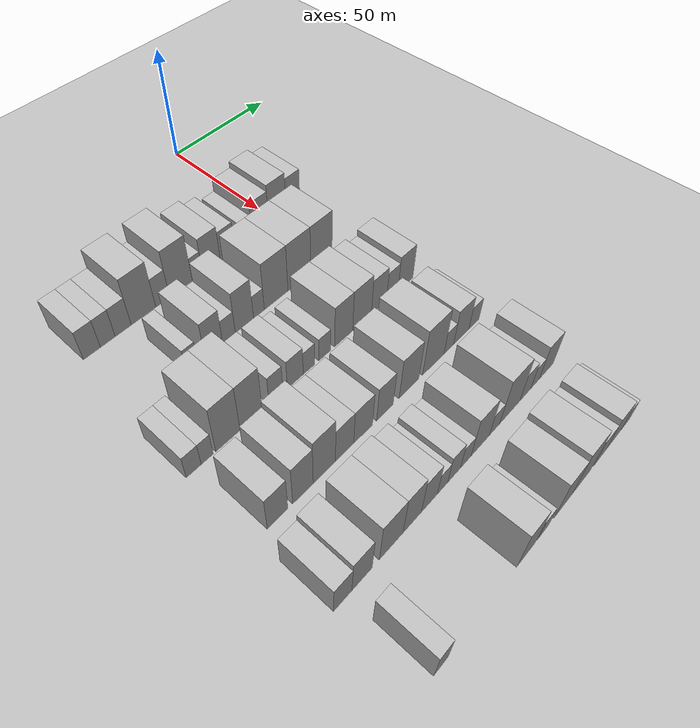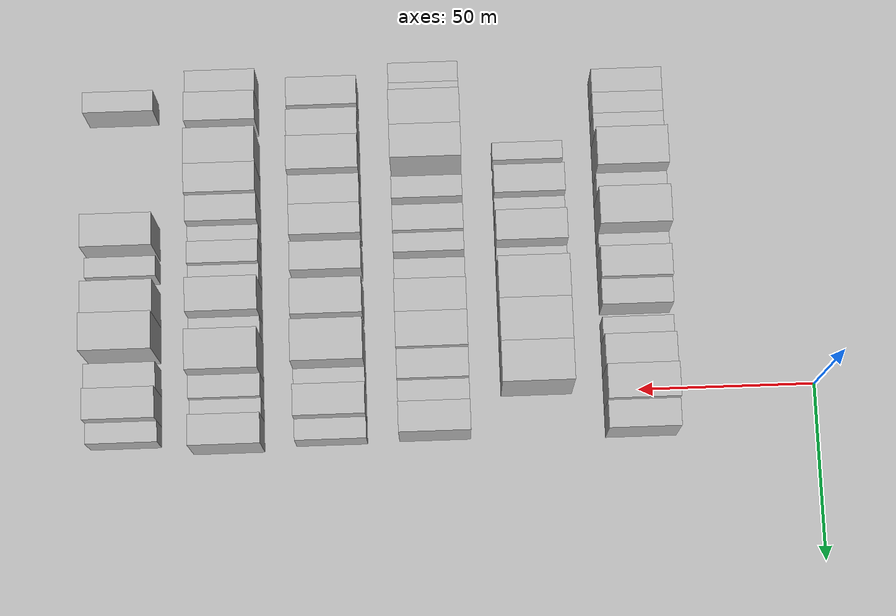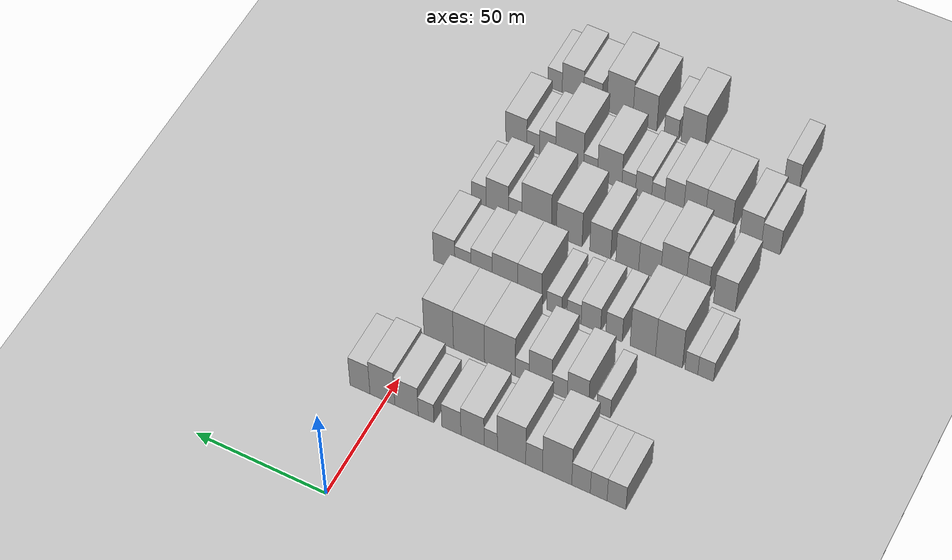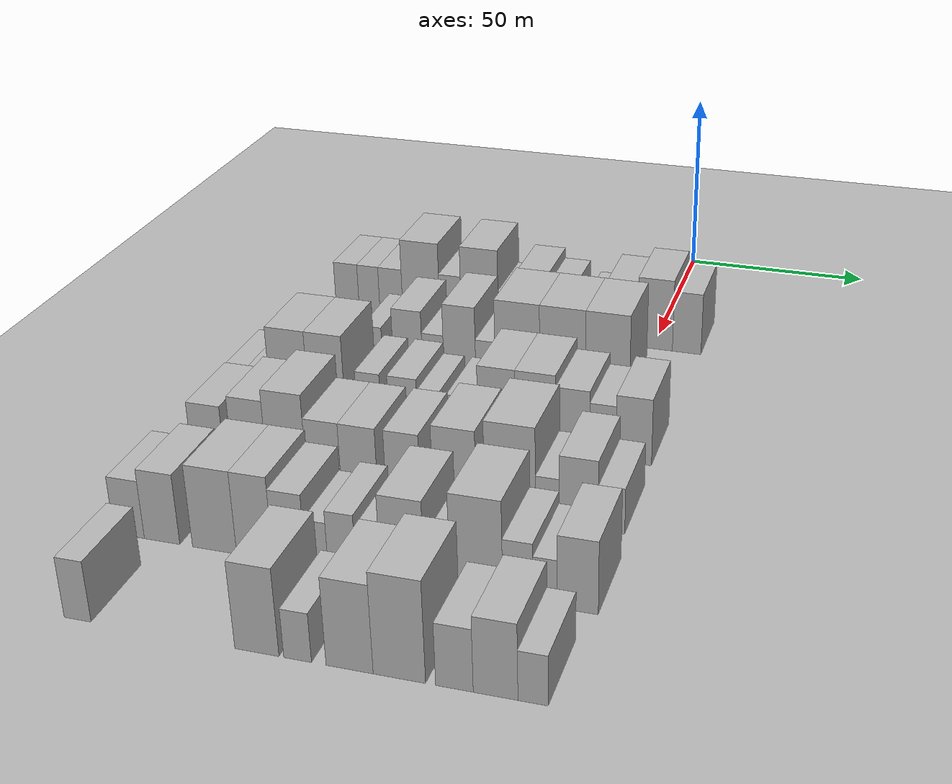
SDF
<sdf version="1.6">
 <world name="default">
  <include><name>ground_plane_1</name><uri>model://HANNAS_ground_plane</uri></include>
  <include>
   <name>ground_plane_2</name>
   <uri>model://HANNAS_ground_plane</uri>
   <pose>100 0 0  0 0 0</pose>
  </include>
  <model name="building_46">
   <static>1</static>
   <pose>50.0000 -87.1655 0 0.000000 0.000000 0.000000</pose>
   <link name="link">
    <pose>0 0 7.50 0 0 0</pose>
    <collision name="collision"><geometry><box><size>20.0000 6.9278 15.0000</size></box></geometry></collision>
    <visual name="visual">
     <cast_shadows>0</cast_shadows>
     <geometry><box><size>20.0000 6.9278 15.0000</size></box></geometry>
     <material>
      <script>
       <uri>model://HANNAS_wall/materials/scripts</uri>
       <uri>model://HANNAS_wall/materials/textures</uri>
       <name>vrc/HANNAS_wall</name>
      </script>
     </material>
    </visual>
   </link>
  </model>
  <model name="building_47">
   <static>1</static>
   <pose>50.0000 -80.6091 0 0.000000 0.000000 0.000000</pose>
   <link name="link">
    <pose>0 0 7.50 0 0 0</pose>
    <collision name="collision"><geometry><box><size>20.0000 6.1850 15.0000</size></box></geometry></collision>
    <visual name="visual">
     <cast_shadows>0</cast_shadows>
     <geometry><box><size>20.0000 6.1850 15.0000</size></box></geometry>
     <material>
      <script>
       <uri>model://HANNAS_wall/materials/scripts</uri>
       <uri>model://HANNAS_wall/materials/textures</uri>
       <name>vrc/HANNAS_wall</name>
      </script>
     </material>
    </visual>
   </link>
  </model>
  <model name="building_48">
   <static>1</static>
   <pose>50.0000 -74.0983 0 0.000000 0.000000 0.000000</pose>
   <link name="link">
    <pose>0 0 7.50 0 0 0</pose>
    <collision name="collision"><geometry><box><size>20.0000 6.8367 15.0000</size></box></geometry></collision>
    <visual name="visual">
     <cast_shadows>0</cast_shadows>
     <geometry><box><size>20.0000 6.8367 15.0000</size></box></geometry>
     <material>
      <script>
       <uri>model://HANNAS_wall/materials/scripts</uri>
       <uri>model://HANNAS_wall/materials/textures</uri>
       <name>vrc/HANNAS_wall</name>
      </script>
     </material>
    </visual>
   </link>
  </model>
  <model name="building_49">
   <static>1</static>
   <pose>50.0000 -65.2504 0 0.000000 0.000000 0.000000</pose>
   <link name="link">
    <pose>0 0 12.00 0 0 0</pose>
    <collision name="collision"><geometry><box><size>20.0000 10.8591 24.0000</size></box></geometry></collision>
    <visual name="visual">
     <cast_shadows>0</cast_shadows>
     <geometry><box><size>20.0000 10.8591 24.0000</size></box></geometry>
     <material>
      <script>
       <uri>model://HANNAS_wall/materials/scripts</uri>
       <uri>model://HANNAS_wall/materials/textures</uri>
       <name>vrc/HANNAS_wall</name>
      </script>
     </material>
    </visual>
   </link>
  </model>
  <model name="building_50">
   <static>1</static>
   <pose>50.0000 -56.7006 0 0.000000 0.000000 0.000000</pose>
   <link name="link">
    <pose>0 0 7.50 0 0 0</pose>
    <collision name="collision"><geometry><box><size>20.0000 6.2407 15.0000</size></box></geometry></collision>
    <visual name="visual">
     <cast_shadows>0</cast_shadows>
     <geometry><box><size>20.0000 6.2407 15.0000</size></box></geometry>
     <material>
      <script>
       <uri>model://HANNAS_wall/materials/scripts</uri>
       <uri>model://HANNAS_wall/materials/textures</uri>
       <name>vrc/HANNAS_wall</name>
      </script>
     </material>
    </visual>
   </link>
  </model>
  <model name="building_51">
   <static>1</static>
   <pose>50.0000 -48.2605 0 0.000000 0.000000 0.000000</pose>
   <link name="link">
    <pose>0 0 12.00 0 0 0</pose>
    <collision name="collision"><geometry><box><size>20.0000 10.6394 24.0000</size></box></geometry></collision>
    <visual name="visual">
     <cast_shadows>0</cast_shadows>
     <geometry><box><size>20.0000 10.6394 24.0000</size></box></geometry>
     <material>
      <script>
       <uri>model://HANNAS_wall/materials/scripts</uri>
       <uri>model://HANNAS_wall/materials/textures</uri>
       <name>vrc/HANNAS_wall</name>
      </script>
     </material>
    </visual>
   </link>
  </model>
  <model name="building_52">
   <static>1</static>
   <pose>50.0000 -40.4594 0 0.000000 0.000000 0.000000</pose>
   <link name="link">
    <pose>0 0 6.00 0 0 0</pose>
    <collision name="collision"><geometry><box><size>20.0000 4.9629 12.0000</size></box></geometry></collision>
    <visual name="visual">
     <cast_shadows>0</cast_shadows>
     <geometry><box><size>20.0000 4.9629 12.0000</size></box></geometry>
     <material>
      <script>
       <uri>model://HANNAS_wall/materials/scripts</uri>
       <uri>model://HANNAS_wall/materials/textures</uri>
       <name>vrc/HANNAS_wall</name>
      </script>
     </material>
    </visual>
   </link>
  </model>
  <model name="building_53">
   <static>1</static>
   <pose>50.0000 -33.5909 0 0.000000 0.000000 0.000000</pose>
   <link name="link">
    <pose>0 0 9.00 0 0 0</pose>
    <collision name="collision"><geometry><box><size>20.0000 8.7740 18.0000</size></box></geometry></collision>
    <visual name="visual">
     <cast_shadows>0</cast_shadows>
     <geometry><box><size>20.0000 8.7740 18.0000</size></box></geometry>
     <material>
      <script>
       <uri>model://HANNAS_wall/materials/scripts</uri>
       <uri>model://HANNAS_wall/materials/textures</uri>
       <name>vrc/HANNAS_wall</name>
      </script>
     </material>
    </visual>
   </link>
  </model>
  <model name="building_54">
   <static>1</static>
   <pose>50.0000 -25.5761 0 0.000000 0.000000 0.000000</pose>
   <link name="link">
    <pose>0 0 7.50 0 0 0</pose>
    <collision name="collision"><geometry><box><size>20.0000 7.2556 15.0000</size></box></geometry></collision>
    <visual name="visual">
     <cast_shadows>0</cast_shadows>
     <geometry><box><size>20.0000 7.2556 15.0000</size></box></geometry>
     <material>
      <script>
       <uri>model://HANNAS_wall/materials/scripts</uri>
       <uri>model://HANNAS_wall/materials/textures</uri>
       <name>vrc/HANNAS_wall</name>
      </script>
     </material>
    </visual>
   </link>
  </model>
  <model name="building_55">
   <static>1</static>
   <pose>50.0000 -15.9511 0 0.000000 0.000000 0.000000</pose>
   <link name="link">
    <pose>0 0 6.00 0 0 0</pose>
    <collision name="collision"><geometry><box><size>20.0000 5.9945 12.0000</size></box></geometry></collision>
    <visual name="visual">
     <cast_shadows>0</cast_shadows>
     <geometry><box><size>20.0000 5.9945 12.0000</size></box></geometry>
     <material>
      <script>
       <uri>model://HANNAS_wall/materials/scripts</uri>
       <uri>model://HANNAS_wall/materials/textures</uri>
       <name>vrc/HANNAS_wall</name>
      </script>
     </material>
    </visual>
   </link>
  </model>
  <model name="building_56">
   <static>1</static>
   <pose>50.0000 -8.4623 0 0.000000 0.000000 0.000000</pose>
   <link name="link">
    <pose>0 0 9.00 0 0 0</pose>
    <collision name="collision"><geometry><box><size>20.0000 8.9830 18.0000</size></box></geometry></collision>
    <visual name="visual">
     <cast_shadows>0</cast_shadows>
     <geometry><box><size>20.0000 8.9830 18.0000</size></box></geometry>
     <material>
      <script>
       <uri>model://HANNAS_wall/materials/scripts</uri>
       <uri>model://HANNAS_wall/materials/textures</uri>
       <name>vrc/HANNAS_wall</name>
      </script>
     </material>
    </visual>
   </link>
  </model>
  <model name="building_57">
   <static>1</static>
   <pose>50.0000 0.8350 0 0.000000 0.000000 0.000000</pose>
   <link name="link">
    <pose>0 0 10.50 0 0 0</pose>
    <collision name="collision"><geometry><box><size>20.0000 9.6116 21.0000</size></box></geometry></collision>
    <visual name="visual">
     <cast_shadows>0</cast_shadows>
     <geometry><box><size>20.0000 9.6116 21.0000</size></box></geometry>
     <material>
      <script>
       <uri>model://HANNAS_wall/materials/scripts</uri>
       <uri>model://HANNAS_wall/materials/textures</uri>
       <name>vrc/HANNAS_wall</name>
      </script>
     </material>
    </visual>
   </link>
  </model>
  <model name="building_58">
   <static>1</static>
   <pose>50.0000 9.5036 0 0.000000 0.000000 0.000000</pose>
   <link name="link">
    <pose>0 0 9.00 0 0 0</pose>
    <collision name="collision"><geometry><box><size>20.0000 7.7256 18.0000</size></box></geometry></collision>
    <visual name="visual">
     <cast_shadows>0</cast_shadows>
     <geometry><box><size>20.0000 7.7256 18.0000</size></box></geometry>
     <material>
      <script>
       <uri>model://HANNAS_wall/materials/scripts</uri>
       <uri>model://HANNAS_wall/materials/textures</uri>
       <name>vrc/HANNAS_wall</name>
      </script>
     </material>
    </visual>
   </link>
  </model>
  <model name="building_159">
   <static>1</static>
   <pose>79.0000 -68.0960 0 0.000000 0.000000 0.000000</pose>
   <link name="link">
    <pose>0 0 6.00 0 0 0</pose>
    <collision name="collision"><geometry><box><size>20.0000 5.1907 12.0000</size></box></geometry></collision>
    <visual name="visual">
     <cast_shadows>0</cast_shadows>
     <geometry><box><size>20.0000 5.1907 12.0000</size></box></geometry>
     <material>
      <script>
       <uri>model://HANNAS_wall/materials/scripts</uri>
       <uri>model://HANNAS_wall/materials/textures</uri>
       <name>vrc/HANNAS_wall</name>
      </script>
     </material>
    </visual>
   </link>
  </model>
  <model name="building_160">
   <static>1</static>
   <pose>79.0000 -58.4691 0 0.000000 0.000000 0.000000</pose>
   <link name="link">
    <pose>0 0 9.00 0 0 0</pose>
    <collision name="collision"><geometry><box><size>20.0000 8.0632 18.0000</size></box></geometry></collision>
    <visual name="visual">
     <cast_shadows>0</cast_shadows>
     <geometry><box><size>20.0000 8.0632 18.0000</size></box></geometry>
     <material>
      <script>
       <uri>model://HANNAS_wall/materials/scripts</uri>
       <uri>model://HANNAS_wall/materials/textures</uri>
       <name>vrc/HANNAS_wall</name>
      </script>
     </material>
    </visual>
   </link>
  </model>
  <model name="building_161">
   <static>1</static>
   <pose>79.0000 -51.5164 0 0.000000 0.000000 0.000000</pose>
   <link name="link">
    <pose>0 0 6.00 0 0 0</pose>
    <collision name="collision"><geometry><box><size>20.0000 5.8422 12.0000</size></box></geometry></collision>
    <visual name="visual">
     <cast_shadows>0</cast_shadows>
     <geometry><box><size>20.0000 5.8422 12.0000</size></box></geometry>
     <material>
      <script>
       <uri>model://HANNAS_wall/materials/scripts</uri>
       <uri>model://HANNAS_wall/materials/textures</uri>
       <name>vrc/HANNAS_wall</name>
      </script>
     </material>
    </visual>
   </link>
  </model>
  <model name="building_162">
   <static>1</static>
   <pose>79.0000 -44.2681 0 0.000000 0.000000 0.000000</pose>
   <link name="link">
    <pose>0 0 10.50 0 0 0</pose>
    <collision name="collision"><geometry><box><size>20.0000 8.6544 21.0000</size></box></geometry></collision>
    <visual name="visual">
     <cast_shadows>0</cast_shadows>
     <geometry><box><size>20.0000 8.6544 21.0000</size></box></geometry>
     <material>
      <script>
       <uri>model://HANNAS_wall/materials/scripts</uri>
       <uri>model://HANNAS_wall/materials/textures</uri>
       <name>vrc/HANNAS_wall</name>
      </script>
     </material>
    </visual>
   </link>
  </model>
  <model name="building_163">
   <static>1</static>
   <pose>79.0000 -37.3305 0 0.000000 0.000000 0.000000</pose>
   <link name="link">
    <pose>0 0 6.00 0 0 0</pose>
    <collision name="collision"><geometry><box><size>20.0000 5.2207 12.0000</size></box></geometry></collision>
    <visual name="visual">
     <cast_shadows>0</cast_shadows>
     <geometry><box><size>20.0000 5.2207 12.0000</size></box></geometry>
     <material>
      <script>
       <uri>model://HANNAS_wall/materials/scripts</uri>
       <uri>model://HANNAS_wall/materials/textures</uri>
       <name>vrc/HANNAS_wall</name>
      </script>
     </material>
    </visual>
   </link>
  </model>
  <model name="building_164">
   <static>1</static>
   <pose>79.0000 -28.7968 0 0.000000 0.000000 0.000000</pose>
   <link name="link">
    <pose>0 0 12.00 0 0 0</pose>
    <collision name="collision"><geometry><box><size>20.0000 11.8466 24.0000</size></box></geometry></collision>
    <visual name="visual">
     <cast_shadows>0</cast_shadows>
     <geometry><box><size>20.0000 11.8466 24.0000</size></box></geometry>
     <material>
      <script>
       <uri>model://HANNAS_wall/materials/scripts</uri>
       <uri>model://HANNAS_wall/materials/textures</uri>
       <name>vrc/HANNAS_wall</name>
      </script>
     </material>
    </visual>
   </link>
  </model>
  <model name="building_165">
   <static>1</static>
   <pose>79.0000 -16.8841 0 0.000000 0.000000 0.000000</pose>
   <link name="link">
    <pose>0 0 12.00 0 0 0</pose>
    <collision name="collision"><geometry><box><size>20.0000 11.9790 24.0000</size></box></geometry></collision>
    <visual name="visual">
     <cast_shadows>0</cast_shadows>
     <geometry><box><size>20.0000 11.9790 24.0000</size></box></geometry>
     <material>
      <script>
       <uri>model://HANNAS_wall/materials/scripts</uri>
       <uri>model://HANNAS_wall/materials/textures</uri>
       <name>vrc/HANNAS_wall</name>
      </script>
     </material>
    </visual>
   </link>
  </model>
  <model name="building_166">
   <static>1</static>
   <pose>79.0000 -5.1705 0 0.000000 0.000000 0.000000</pose>
   <link name="link">
    <pose>0 0 12.00 0 0 0</pose>
    <collision name="collision"><geometry><box><size>20.0000 11.4482 24.0000</size></box></geometry></collision>
    <visual name="visual">
     <cast_shadows>0</cast_shadows>
     <geometry><box><size>20.0000 11.4482 24.0000</size></box></geometry>
     <material>
      <script>
       <uri>model://HANNAS_wall/materials/scripts</uri>
       <uri>model://HANNAS_wall/materials/textures</uri>
       <name>vrc/HANNAS_wall</name>
      </script>
     </material>
    </visual>
   </link>
  </model>
  <model name="building_266">
   <static>1</static>
   <pose>108.0000 -92.4656 0 0.000000 0.000000 0.000000</pose>
   <link name="link">
    <pose>0 0 6.00 0 0 0</pose>
    <collision name="collision"><geometry><box><size>20.0000 5.9089 12.0000</size></box></geometry></collision>
    <visual name="visual">
     <cast_shadows>0</cast_shadows>
     <geometry><box><size>20.0000 5.9089 12.0000</size></box></geometry>
     <material>
      <script>
       <uri>model://HANNAS_wall/materials/scripts</uri>
       <uri>model://HANNAS_wall/materials/textures</uri>
       <name>vrc/HANNAS_wall</name>
      </script>
     </material>
    </visual>
   </link>
  </model>
  <model name="building_267">
   <static>1</static>
   <pose>108.0000 -87.1014 0 0.000000 0.000000 0.000000</pose>
   <link name="link">
    <pose>0 0 6.00 0 0 0</pose>
    <collision name="collision"><geometry><box><size>20.0000 4.8195 12.0000</size></box></geometry></collision>
    <visual name="visual">
     <cast_shadows>0</cast_shadows>
     <geometry><box><size>20.0000 4.8195 12.0000</size></box></geometry>
     <material>
      <script>
       <uri>model://HANNAS_wall/materials/scripts</uri>
       <uri>model://HANNAS_wall/materials/textures</uri>
       <name>vrc/HANNAS_wall</name>
      </script>
     </material>
    </visual>
   </link>
  </model>
  <model name="building_268">
   <static>1</static>
   <pose>108.0000 -78.6225 0 0.000000 0.000000 0.000000</pose>
   <link name="link">
    <pose>0 0 12.00 0 0 0</pose>
    <collision name="collision"><geometry><box><size>20.0000 10.1384 24.0000</size></box></geometry></collision>
    <visual name="visual">
     <cast_shadows>0</cast_shadows>
     <geometry><box><size>20.0000 10.1384 24.0000</size></box></geometry>
     <material>
      <script>
       <uri>model://HANNAS_wall/materials/scripts</uri>
       <uri>model://HANNAS_wall/materials/textures</uri>
       <name>vrc/HANNAS_wall</name>
      </script>
     </material>
    </visual>
   </link>
  </model>
  <model name="building_269">
   <static>1</static>
   <pose>108.0000 -68.7360 0 0.000000 0.000000 0.000000</pose>
   <link name="link">
    <pose>0 0 12.00 0 0 0</pose>
    <collision name="collision"><geometry><box><size>20.0000 9.6346 24.0000</size></box></geometry></collision>
    <visual name="visual">
     <cast_shadows>0</cast_shadows>
     <geometry><box><size>20.0000 9.6346 24.0000</size></box></geometry>
     <material>
      <script>
       <uri>model://HANNAS_wall/materials/scripts</uri>
       <uri>model://HANNAS_wall/materials/textures</uri>
       <name>vrc/HANNAS_wall</name>
      </script>
     </material>
    </visual>
   </link>
  </model>
  <model name="building_270">
   <static>1</static>
   <pose>108.0000 -57.7810 0 0.000000 0.000000 0.000000</pose>
   <link name="link">
    <pose>0 0 7.50 0 0 0</pose>
    <collision name="collision"><geometry><box><size>20.0000 6.2753 15.0000</size></box></geometry></collision>
    <visual name="visual">
     <cast_shadows>0</cast_shadows>
     <geometry><box><size>20.0000 6.2753 15.0000</size></box></geometry>
     <material>
      <script>
       <uri>model://HANNAS_wall/materials/scripts</uri>
       <uri>model://HANNAS_wall/materials/textures</uri>
       <name>vrc/HANNAS_wall</name>
      </script>
     </material>
    </visual>
   </link>
  </model>
  <model name="building_271">
   <static>1</static>
   <pose>108.0000 -48.9227 0 0.000000 0.000000 0.000000</pose>
   <link name="link">
    <pose>0 0 7.50 0 0 0</pose>
    <collision name="collision"><geometry><box><size>20.0000 7.4414 15.0000</size></box></geometry></collision>
    <visual name="visual">
     <cast_shadows>0</cast_shadows>
     <geometry><box><size>20.0000 7.4414 15.0000</size></box></geometry>
     <material>
      <script>
       <uri>model://HANNAS_wall/materials/scripts</uri>
       <uri>model://HANNAS_wall/materials/textures</uri>
       <name>vrc/HANNAS_wall</name>
      </script>
     </material>
    </visual>
   </link>
  </model>
  <model name="building_272">
   <static>1</static>
   <pose>108.0000 -42.4587 0 0.000000 0.000000 0.000000</pose>
   <link name="link">
    <pose>0 0 6.00 0 0 0</pose>
    <collision name="collision"><geometry><box><size>20.0000 5.4867 12.0000</size></box></geometry></collision>
    <visual name="visual">
     <cast_shadows>0</cast_shadows>
     <geometry><box><size>20.0000 5.4867 12.0000</size></box></geometry>
     <material>
      <script>
       <uri>model://HANNAS_wall/materials/scripts</uri>
       <uri>model://HANNAS_wall/materials/textures</uri>
       <name>vrc/HANNAS_wall</name>
      </script>
     </material>
    </visual>
   </link>
  </model>
  <model name="building_273">
   <static>1</static>
   <pose>108.0000 -34.8053 0 0.000000 0.000000 0.000000</pose>
   <link name="link">
    <pose>0 0 6.00 0 0 0</pose>
    <collision name="collision"><geometry><box><size>20.0000 5.8201 12.0000</size></box></geometry></collision>
    <visual name="visual">
     <cast_shadows>0</cast_shadows>
     <geometry><box><size>20.0000 5.8201 12.0000</size></box></geometry>
     <material>
      <script>
       <uri>model://HANNAS_wall/materials/scripts</uri>
       <uri>model://HANNAS_wall/materials/textures</uri>
       <name>vrc/HANNAS_wall</name>
      </script>
     </material>
    </visual>
   </link>
  </model>
  <model name="building_274">
   <static>1</static>
   <pose>108.0000 -25.2712 0 0.000000 0.000000 0.000000</pose>
   <link name="link">
    <pose>0 0 10.50 0 0 0</pose>
    <collision name="collision"><geometry><box><size>20.0000 9.2482 21.0000</size></box></geometry></collision>
    <visual name="visual">
     <cast_shadows>0</cast_shadows>
     <geometry><box><size>20.0000 9.2482 21.0000</size></box></geometry>
     <material>
      <script>
       <uri>model://HANNAS_wall/materials/scripts</uri>
       <uri>model://HANNAS_wall/materials/textures</uri>
       <name>vrc/HANNAS_wall</name>
      </script>
     </material>
    </visual>
   </link>
  </model>
  <model name="building_275">
   <static>1</static>
   <pose>108.0000 -15.6861 0 0.000000 0.000000 0.000000</pose>
   <link name="link">
    <pose>0 0 10.50 0 0 0</pose>
    <collision name="collision"><geometry><box><size>20.0000 9.9220 21.0000</size></box></geometry></collision>
    <visual name="visual">
     <cast_shadows>0</cast_shadows>
     <geometry><box><size>20.0000 9.9220 21.0000</size></box></geometry>
     <material>
      <script>
       <uri>model://HANNAS_wall/materials/scripts</uri>
       <uri>model://HANNAS_wall/materials/textures</uri>
       <name>vrc/HANNAS_wall</name>
      </script>
     </material>
    </visual>
   </link>
  </model>
  <model name="building_276">
   <static>1</static>
   <pose>108.0000 -6.5782 0 0.000000 0.000000 0.000000</pose>
   <link name="link">
    <pose>0 0 9.00 0 0 0</pose>
    <collision name="collision"><geometry><box><size>20.0000 8.2938 18.0000</size></box></geometry></collision>
    <visual name="visual">
     <cast_shadows>0</cast_shadows>
     <geometry><box><size>20.0000 8.2938 18.0000</size></box></geometry>
     <material>
      <script>
       <uri>model://HANNAS_wall/materials/scripts</uri>
       <uri>model://HANNAS_wall/materials/textures</uri>
       <name>vrc/HANNAS_wall</name>
      </script>
     </material>
    </visual>
   </link>
  </model>
  <model name="building_277">
   <static>1</static>
   <pose>108.0000 0.7625 0 0.000000 0.000000 0.000000</pose>
   <link name="link">
    <pose>0 0 7.50 0 0 0</pose>
    <collision name="collision"><geometry><box><size>20.0000 6.3876 15.0000</size></box></geometry></collision>
    <visual name="visual">
     <cast_shadows>0</cast_shadows>
     <geometry><box><size>20.0000 6.3876 15.0000</size></box></geometry>
     <material>
      <script>
       <uri>model://HANNAS_wall/materials/scripts</uri>
       <uri>model://HANNAS_wall/materials/textures</uri>
       <name>vrc/HANNAS_wall</name>
      </script>
     </material>
    </visual>
   </link>
  </model>
  <model name="building_278">
   <static>1</static>
   <pose>108.0000 8.2227 0 0.000000 0.000000 0.000000</pose>
   <link name="link">
    <pose>0 0 9.00 0 0 0</pose>
    <collision name="collision"><geometry><box><size>20.0000 8.5326 18.0000</size></box></geometry></collision>
    <visual name="visual">
     <cast_shadows>0</cast_shadows>
     <geometry><box><size>20.0000 8.5326 18.0000</size></box></geometry>
     <material>
      <script>
       <uri>model://HANNAS_wall/materials/scripts</uri>
       <uri>model://HANNAS_wall/materials/textures</uri>
       <name>vrc/HANNAS_wall</name>
      </script>
     </material>
    </visual>
   </link>
  </model>
  <model name="building_371">
   <static>1</static>
   <pose>137.0000 -86.0611 0 0.000000 0.000000 0.000000</pose>
   <link name="link">
    <pose>0 0 9.00 0 0 0</pose>
    <collision name="collision"><geometry><box><size>20.0000 8.3228 18.0000</size></box></geometry></collision>
    <visual name="visual">
     <cast_shadows>0</cast_shadows>
     <geometry><box><size>20.0000 8.3228 18.0000</size></box></geometry>
     <material>
      <script>
       <uri>model://HANNAS_wall/materials/scripts</uri>
       <uri>model://HANNAS_wall/materials/textures</uri>
       <name>vrc/HANNAS_wall</name>
      </script>
     </material>
    </visual>
   </link>
  </model>
  <model name="building_372">
   <static>1</static>
   <pose>137.0000 -75.5804 0 0.000000 0.000000 0.000000</pose>
   <link name="link">
    <pose>0 0 10.50 0 0 0</pose>
    <collision name="collision"><geometry><box><size>20.0000 8.6385 21.0000</size></box></geometry></collision>
    <visual name="visual">
     <cast_shadows>0</cast_shadows>
     <geometry><box><size>20.0000 8.6385 21.0000</size></box></geometry>
     <material>
      <script>
       <uri>model://HANNAS_wall/materials/scripts</uri>
       <uri>model://HANNAS_wall/materials/textures</uri>
       <name>vrc/HANNAS_wall</name>
      </script>
     </material>
    </visual>
   </link>
  </model>
  <model name="building_373">
   <static>1</static>
   <pose>137.0000 -66.3863 0 0.000000 0.000000 0.000000</pose>
   <link name="link">
    <pose>0 0 12.00 0 0 0</pose>
    <collision name="collision"><geometry><box><size>20.0000 9.7497 24.0000</size></box></geometry></collision>
    <visual name="visual">
     <cast_shadows>0</cast_shadows>
     <geometry><box><size>20.0000 9.7497 24.0000</size></box></geometry>
     <material>
      <script>
       <uri>model://HANNAS_wall/materials/scripts</uri>
       <uri>model://HANNAS_wall/materials/textures</uri>
       <name>vrc/HANNAS_wall</name>
      </script>
     </material>
    </visual>
   </link>
  </model>
  <model name="building_374">
   <static>1</static>
   <pose>137.0000 -57.3161 0 0.000000 0.000000 0.000000</pose>
   <link name="link">
    <pose>0 0 9.00 0 0 0</pose>
    <collision name="collision"><geometry><box><size>20.0000 8.3906 18.0000</size></box></geometry></collision>
    <visual name="visual">
     <cast_shadows>0</cast_shadows>
     <geometry><box><size>20.0000 8.3906 18.0000</size></box></geometry>
     <material>
      <script>
       <uri>model://HANNAS_wall/materials/scripts</uri>
       <uri>model://HANNAS_wall/materials/textures</uri>
       <name>vrc/HANNAS_wall</name>
      </script>
     </material>
    </visual>
   </link>
  </model>
  <model name="building_375">
   <static>1</static>
   <pose>137.0000 -48.7037 0 0.000000 0.000000 0.000000</pose>
   <link name="link">
    <pose>0 0 9.00 0 0 0</pose>
    <collision name="collision"><geometry><box><size>20.0000 8.8342 18.0000</size></box></geometry></collision>
    <visual name="visual">
     <cast_shadows>0</cast_shadows>
     <geometry><box><size>20.0000 8.8342 18.0000</size></box></geometry>
     <material>
      <script>
       <uri>model://HANNAS_wall/materials/scripts</uri>
       <uri>model://HANNAS_wall/materials/textures</uri>
       <name>vrc/HANNAS_wall</name>
      </script>
     </material>
    </visual>
   </link>
  </model>
  <model name="building_376">
   <static>1</static>
   <pose>137.0000 -38.1916 0 0.000000 0.000000 0.000000</pose>
   <link name="link">
    <pose>0 0 9.00 0 0 0</pose>
    <collision name="collision"><geometry><box><size>20.0000 8.1899 18.0000</size></box></geometry></collision>
    <visual name="visual">
     <cast_shadows>0</cast_shadows>
     <geometry><box><size>20.0000 8.1899 18.0000</size></box></geometry>
     <material>
      <script>
       <uri>model://HANNAS_wall/materials/scripts</uri>
       <uri>model://HANNAS_wall/materials/textures</uri>
       <name>vrc/HANNAS_wall</name>
      </script>
     </material>
    </visual>
   </link>
  </model>
  <model name="building_377">
   <static>1</static>
   <pose>137.0000 -26.0255 0 0.000000 0.000000 0.000000</pose>
   <link name="link">
    <pose>0 0 10.50 0 0 0</pose>
    <collision name="collision"><geometry><box><size>20.0000 10.1422 21.0000</size></box></geometry></collision>
    <visual name="visual">
     <cast_shadows>0</cast_shadows>
     <geometry><box><size>20.0000 10.1422 21.0000</size></box></geometry>
     <material>
      <script>
       <uri>model://HANNAS_wall/materials/scripts</uri>
       <uri>model://HANNAS_wall/materials/textures</uri>
       <name>vrc/HANNAS_wall</name>
      </script>
     </material>
    </visual>
   </link>
  </model>
  <model name="building_378">
   <static>1</static>
   <pose>137.0000 -13.1198 0 0.000000 0.000000 0.000000</pose>
   <link name="link">
    <pose>0 0 12.00 0 0 0</pose>
    <collision name="collision"><geometry><box><size>20.0000 11.6692 24.0000</size></box></geometry></collision>
    <visual name="visual">
     <cast_shadows>0</cast_shadows>
     <geometry><box><size>20.0000 11.6692 24.0000</size></box></geometry>
     <material>
      <script>
       <uri>model://HANNAS_wall/materials/scripts</uri>
       <uri>model://HANNAS_wall/materials/textures</uri>
       <name>vrc/HANNAS_wall</name>
      </script>
     </material>
    </visual>
   </link>
  </model>
  <model name="building_379">
   <static>1</static>
   <pose>137.0000 -4.6001 0 0.000000 0.000000 0.000000</pose>
   <link name="link">
    <pose>0 0 6.00 0 0 0</pose>
    <collision name="collision"><geometry><box><size>20.0000 5.3702 12.0000</size></box></geometry></collision>
    <visual name="visual">
     <cast_shadows>0</cast_shadows>
     <geometry><box><size>20.0000 5.3702 12.0000</size></box></geometry>
     <material>
      <script>
       <uri>model://HANNAS_wall/materials/scripts</uri>
       <uri>model://HANNAS_wall/materials/textures</uri>
       <name>vrc/HANNAS_wall</name>
      </script>
     </material>
    </visual>
   </link>
  </model>
  <model name="building_380">
   <static>1</static>
   <pose>137.0000 2.4769 0 0.000000 0.000000 0.000000</pose>
   <link name="link">
    <pose>0 0 9.00 0 0 0</pose>
    <collision name="collision"><geometry><box><size>20.0000 8.7838 18.0000</size></box></geometry></collision>
    <visual name="visual">
     <cast_shadows>0</cast_shadows>
     <geometry><box><size>20.0000 8.7838 18.0000</size></box></geometry>
     <material>
      <script>
       <uri>model://HANNAS_wall/materials/scripts</uri>
       <uri>model://HANNAS_wall/materials/textures</uri>
       <name>vrc/HANNAS_wall</name>
      </script>
     </material>
    </visual>
   </link>
  </model>
  <model name="building_381">
   <static>1</static>
   <pose>137.0000 9.8508 0 0.000000 0.000000 0.000000</pose>
   <link name="link">
    <pose>0 0 6.00 0 0 0</pose>
    <collision name="collision"><geometry><box><size>20.0000 5.9640 12.0000</size></box></geometry></collision>
    <visual name="visual">
     <cast_shadows>0</cast_shadows>
     <geometry><box><size>20.0000 5.9640 12.0000</size></box></geometry>
     <material>
      <script>
       <uri>model://HANNAS_wall/materials/scripts</uri>
       <uri>model://HANNAS_wall/materials/textures</uri>
       <name>vrc/HANNAS_wall</name>
      </script>
     </material>
    </visual>
   </link>
  </model>
  <model name="building_488">
   <static>1</static>
   <pose>166.0000 -90.5502 0 0.000000 0.000000 0.000000</pose>
   <link name="link">
    <pose>0 0 7.50 0 0 0</pose>
    <collision name="collision"><geometry><box><size>20.0000 7.3208 15.0000</size></box></geometry></collision>
    <visual name="visual">
     <cast_shadows>0</cast_shadows>
     <geometry><box><size>20.0000 7.3208 15.0000</size></box></geometry>
     <material>
      <script>
       <uri>model://HANNAS_wall/materials/scripts</uri>
       <uri>model://HANNAS_wall/materials/textures</uri>
       <name>vrc/HANNAS_wall</name>
      </script>
     </material>
    </visual>
   </link>
  </model>
  <model name="building_489">
   <static>1</static>
   <pose>166.0000 -82.6705 0 0.000000 0.000000 0.000000</pose>
   <link name="link">
    <pose>0 0 9.00 0 0 0</pose>
    <collision name="collision"><geometry><box><size>20.0000 8.4388 18.0000</size></box></geometry></collision>
    <visual name="visual">
     <cast_shadows>0</cast_shadows>
     <geometry><box><size>20.0000 8.4388 18.0000</size></box></geometry>
     <material>
      <script>
       <uri>model://HANNAS_wall/materials/scripts</uri>
       <uri>model://HANNAS_wall/materials/textures</uri>
       <name>vrc/HANNAS_wall</name>
      </script>
     </material>
    </visual>
   </link>
  </model>
  <model name="building_490">
   <static>1</static>
   <pose>166.0000 -70.2740 0 0.000000 0.000000 0.000000</pose>
   <link name="link">
    <pose>0 0 10.50 0 0 0</pose>
    <collision name="collision"><geometry><box><size>20.0000 10.3541 21.0000</size></box></geometry></collision>
    <visual name="visual">
     <cast_shadows>0</cast_shadows>
     <geometry><box><size>20.0000 10.3541 21.0000</size></box></geometry>
     <material>
      <script>
       <uri>model://HANNAS_wall/materials/scripts</uri>
       <uri>model://HANNAS_wall/materials/textures</uri>
       <name>vrc/HANNAS_wall</name>
      </script>
     </material>
    </visual>
   </link>
  </model>
  <model name="building_491">
   <static>1</static>
   <pose>166.0000 -60.8939 0 0.000000 0.000000 0.000000</pose>
   <link name="link">
    <pose>0 0 10.50 0 0 0</pose>
    <collision name="collision"><geometry><box><size>20.0000 8.4061 21.0000</size></box></geometry></collision>
    <visual name="visual">
     <cast_shadows>0</cast_shadows>
     <geometry><box><size>20.0000 8.4061 21.0000</size></box></geometry>
     <material>
      <script>
       <uri>model://HANNAS_wall/materials/scripts</uri>
       <uri>model://HANNAS_wall/materials/textures</uri>
       <name>vrc/HANNAS_wall</name>
      </script>
     </material>
    </visual>
   </link>
  </model>
  <model name="building_492">
   <static>1</static>
   <pose>166.0000 -52.9445 0 0.000000 0.000000 0.000000</pose>
   <link name="link">
    <pose>0 0 9.00 0 0 0</pose>
    <collision name="collision"><geometry><box><size>20.0000 7.4928 18.0000</size></box></geometry></collision>
    <visual name="visual">
     <cast_shadows>0</cast_shadows>
     <geometry><box><size>20.0000 7.4928 18.0000</size></box></geometry>
     <material>
      <script>
       <uri>model://HANNAS_wall/materials/scripts</uri>
       <uri>model://HANNAS_wall/materials/textures</uri>
       <name>vrc/HANNAS_wall</name>
      </script>
     </material>
    </visual>
   </link>
  </model>
  <model name="building_493">
   <static>1</static>
   <pose>166.0000 -46.6658 0 0.000000 0.000000 0.000000</pose>
   <link name="link">
    <pose>0 0 6.00 0 0 0</pose>
    <collision name="collision"><geometry><box><size>20.0000 5.0645 12.0000</size></box></geometry></collision>
    <visual name="visual">
     <cast_shadows>0</cast_shadows>
     <geometry><box><size>20.0000 5.0645 12.0000</size></box></geometry>
     <material>
      <script>
       <uri>model://HANNAS_wall/materials/scripts</uri>
       <uri>model://HANNAS_wall/materials/textures</uri>
       <name>vrc/HANNAS_wall</name>
      </script>
     </material>
    </visual>
   </link>
  </model>
  <model name="building_494">
   <static>1</static>
   <pose>166.0000 -40.9798 0 0.000000 0.000000 0.000000</pose>
   <link name="link">
    <pose>0 0 7.50 0 0 0</pose>
    <collision name="collision"><geometry><box><size>20.0000 6.3075 15.0000</size></box></geometry></collision>
    <visual name="visual">
     <cast_shadows>0</cast_shadows>
     <geometry><box><size>20.0000 6.3075 15.0000</size></box></geometry>
     <material>
      <script>
       <uri>model://HANNAS_wall/materials/scripts</uri>
       <uri>model://HANNAS_wall/materials/textures</uri>
       <name>vrc/HANNAS_wall</name>
      </script>
     </material>
    </visual>
   </link>
  </model>
  <model name="building_495">
   <static>1</static>
   <pose>166.0000 -35.1190 0 0.000000 0.000000 0.000000</pose>
   <link name="link">
    <pose>0 0 6.00 0 0 0</pose>
    <collision name="collision"><geometry><box><size>20.0000 5.4140 12.0000</size></box></geometry></collision>
    <visual name="visual">
     <cast_shadows>0</cast_shadows>
     <geometry><box><size>20.0000 5.4140 12.0000</size></box></geometry>
     <material>
      <script>
       <uri>model://HANNAS_wall/materials/scripts</uri>
       <uri>model://HANNAS_wall/materials/textures</uri>
       <name>vrc/HANNAS_wall</name>
      </script>
     </material>
    </visual>
   </link>
  </model>
  <model name="building_496">
   <static>1</static>
   <pose>166.0000 -27.5793 0 0.000000 0.000000 0.000000</pose>
   <link name="link">
    <pose>0 0 10.50 0 0 0</pose>
    <collision name="collision"><geometry><box><size>20.0000 9.6655 21.0000</size></box></geometry></collision>
    <visual name="visual">
     <cast_shadows>0</cast_shadows>
     <geometry><box><size>20.0000 9.6655 21.0000</size></box></geometry>
     <material>
      <script>
       <uri>model://HANNAS_wall/materials/scripts</uri>
       <uri>model://HANNAS_wall/materials/textures</uri>
       <name>vrc/HANNAS_wall</name>
      </script>
     </material>
    </visual>
   </link>
  </model>
  <model name="building_497">
   <static>1</static>
   <pose>166.0000 -19.9623 0 0.000000 0.000000 0.000000</pose>
   <link name="link">
    <pose>0 0 6.00 0 0 0</pose>
    <collision name="collision"><geometry><box><size>20.0000 5.5683 12.0000</size></box></geometry></collision>
    <visual name="visual">
     <cast_shadows>0</cast_shadows>
     <geometry><box><size>20.0000 5.5683 12.0000</size></box></geometry>
     <material>
      <script>
       <uri>model://HANNAS_wall/materials/scripts</uri>
       <uri>model://HANNAS_wall/materials/textures</uri>
       <name>vrc/HANNAS_wall</name>
      </script>
     </material>
    </visual>
   </link>
  </model>
  <model name="building_498">
   <static>1</static>
   <pose>166.0000 -11.5345 0 0.000000 0.000000 0.000000</pose>
   <link name="link">
    <pose>0 0 12.00 0 0 0</pose>
    <collision name="collision"><geometry><box><size>20.0000 11.2873 24.0000</size></box></geometry></collision>
    <visual name="visual">
     <cast_shadows>0</cast_shadows>
     <geometry><box><size>20.0000 11.2873 24.0000</size></box></geometry>
     <material>
      <script>
       <uri>model://HANNAS_wall/materials/scripts</uri>
       <uri>model://HANNAS_wall/materials/textures</uri>
       <name>vrc/HANNAS_wall</name>
      </script>
     </material>
    </visual>
   </link>
  </model>
  <model name="building_499">
   <static>1</static>
   <pose>166.0000 -2.6759 0 0.000000 0.000000 0.000000</pose>
   <link name="link">
    <pose>0 0 7.50 0 0 0</pose>
    <collision name="collision"><geometry><box><size>20.0000 6.4299 15.0000</size></box></geometry></collision>
    <visual name="visual">
     <cast_shadows>0</cast_shadows>
     <geometry><box><size>20.0000 6.4299 15.0000</size></box></geometry>
     <material>
      <script>
       <uri>model://HANNAS_wall/materials/scripts</uri>
       <uri>model://HANNAS_wall/materials/textures</uri>
       <name>vrc/HANNAS_wall</name>
      </script>
     </material>
    </visual>
   </link>
  </model>
  <model name="building_500">
   <static>1</static>
   <pose>166.0000 3.0605 0 0.000000 0.000000 0.000000</pose>
   <link name="link">
    <pose>0 0 6.00 0 0 0</pose>
    <collision name="collision"><geometry><box><size>20.0000 5.0429 12.0000</size></box></geometry></collision>
    <visual name="visual">
     <cast_shadows>0</cast_shadows>
     <geometry><box><size>20.0000 5.0429 12.0000</size></box></geometry>
     <material>
      <script>
       <uri>model://HANNAS_wall/materials/scripts</uri>
       <uri>model://HANNAS_wall/materials/textures</uri>
       <name>vrc/HANNAS_wall</name>
      </script>
     </material>
    </visual>
   </link>
  </model>
  <model name="building_501">
   <static>1</static>
   <pose>166.0000 9.8584 0 0.000000 0.000000 0.000000</pose>
   <link name="link">
    <pose>0 0 9.00 0 0 0</pose>
    <collision name="collision"><geometry><box><size>20.0000 8.5529 18.0000</size></box></geometry></collision>
    <visual name="visual">
     <cast_shadows>0</cast_shadows>
     <geometry><box><size>20.0000 8.5529 18.0000</size></box></geometry>
     <material>
      <script>
       <uri>model://HANNAS_wall/materials/scripts</uri>
       <uri>model://HANNAS_wall/materials/textures</uri>
       <name>vrc/HANNAS_wall</name>
      </script>
     </material>
    </visual>
   </link>
  </model>
  <model name="building_605">
   <static>1</static>
   <pose>195.0000 -85.7622 0 0.000000 0.000000 0.000000</pose>
   <link name="link">
    <pose>0 0 7.50 0 0 0</pose>
    <collision name="collision"><geometry><box><size>20.0000 6.0159 15.0000</size></box></geometry></collision>
    <visual name="visual">
     <cast_shadows>0</cast_shadows>
     <geometry><box><size>20.0000 6.0159 15.0000</size></box></geometry>
     <material>
      <script>
       <uri>model://HANNAS_wall/materials/scripts</uri>
       <uri>model://HANNAS_wall/materials/textures</uri>
       <name>vrc/HANNAS_wall</name>
      </script>
     </material>
    </visual>
   </link>
  </model>
  <model name="building_606">
   <static>1</static>
   <pose>195.0000 -46.7821 0 0.000000 0.000000 0.000000</pose>
   <link name="link">
    <pose>0 0 10.50 0 0 0</pose>
    <collision name="collision"><geometry><box><size>20.0000 9.3148 21.0000</size></box></geometry></collision>
    <visual name="visual">
     <cast_shadows>0</cast_shadows>
     <geometry><box><size>20.0000 9.3148 21.0000</size></box></geometry>
     <material>
      <script>
       <uri>model://HANNAS_wall/materials/scripts</uri>
       <uri>model://HANNAS_wall/materials/textures</uri>
       <name>vrc/HANNAS_wall</name>
      </script>
     </material>
    </visual>
   </link>
  </model>
  <model name="building_607">
   <static>1</static>
   <pose>195.0000 -38.2405 0 0.000000 0.000000 0.000000</pose>
   <link name="link">
    <pose>0 0 6.00 0 0 0</pose>
    <collision name="collision"><geometry><box><size>20.0000 5.7684 12.0000</size></box></geometry></collision>
    <visual name="visual">
     <cast_shadows>0</cast_shadows>
     <geometry><box><size>20.0000 5.7684 12.0000</size></box></geometry>
     <material>
      <script>
       <uri>model://HANNAS_wall/materials/scripts</uri>
       <uri>model://HANNAS_wall/materials/textures</uri>
       <name>vrc/HANNAS_wall</name>
      </script>
     </material>
    </visual>
   </link>
  </model>
  <model name="building_608">
   <static>1</static>
   <pose>195.0000 -27.5354 0 0.000000 0.000000 0.000000</pose>
   <link name="link">
    <pose>0 0 10.50 0 0 0</pose>
    <collision name="collision"><geometry><box><size>20.0000 9.6418 21.0000</size></box></geometry></collision>
    <visual name="visual">
     <cast_shadows>0</cast_shadows>
     <geometry><box><size>20.0000 9.6418 21.0000</size></box></geometry>
     <material>
      <script>
       <uri>model://HANNAS_wall/materials/scripts</uri>
       <uri>model://HANNAS_wall/materials/textures</uri>
       <name>vrc/HANNAS_wall</name>
      </script>
     </material>
    </visual>
   </link>
  </model>
  <model name="building_609">
   <static>1</static>
   <pose>195.0000 -17.4404 0 0.000000 0.000000 0.000000</pose>
   <link name="link">
    <pose>0 0 12.00 0 0 0</pose>
    <collision name="collision"><geometry><box><size>20.0000 10.5482 24.0000</size></box></geometry></collision>
    <visual name="visual">
     <cast_shadows>0</cast_shadows>
     <geometry><box><size>20.0000 10.5482 24.0000</size></box></geometry>
     <material>
      <script>
       <uri>model://HANNAS_wall/materials/scripts</uri>
       <uri>model://HANNAS_wall/materials/textures</uri>
       <name>vrc/HANNAS_wall</name>
      </script>
     </material>
    </visual>
   </link>
  </model>
  <model name="building_610">
   <static>1</static>
   <pose>195.0000 -6.4491 0 0.000000 0.000000 0.000000</pose>
   <link name="link">
    <pose>0 0 7.50 0 0 0</pose>
    <collision name="collision"><geometry><box><size>20.0000 7.4343 15.0000</size></box></geometry></collision>
    <visual name="visual">
     <cast_shadows>0</cast_shadows>
     <geometry><box><size>20.0000 7.4343 15.0000</size></box></geometry>
     <material>
      <script>
       <uri>model://HANNAS_wall/materials/scripts</uri>
       <uri>model://HANNAS_wall/materials/textures</uri>
       <name>vrc/HANNAS_wall</name>
      </script>
     </material>
    </visual>
   </link>
  </model>
  <model name="building_611">
   <static>1</static>
   <pose>195.0000 1.6309 0 0.000000 0.000000 0.000000</pose>
   <link name="link">
    <pose>0 0 9.00 0 0 0</pose>
    <collision name="collision"><geometry><box><size>20.0000 8.7257 18.0000</size></box></geometry></collision>
    <visual name="visual">
     <cast_shadows>0</cast_shadows>
     <geometry><box><size>20.0000 8.7257 18.0000</size></box></geometry>
     <material>
      <script>
       <uri>model://HANNAS_wall/materials/scripts</uri>
       <uri>model://HANNAS_wall/materials/textures</uri>
       <name>vrc/HANNAS_wall</name>
      </script>
     </material>
    </visual>
   </link>
  </model>
  <model name="building_612">
   <static>1</static>
   <pose>195.0000 8.9175 0 0.000000 0.000000 0.000000</pose>
   <link name="link">
    <pose>0 0 6.00 0 0 0</pose>
    <collision name="collision"><geometry><box><size>20.0000 5.8475 12.0000</size></box></geometry></collision>
    <visual name="visual">
     <cast_shadows>0</cast_shadows>
     <geometry><box><size>20.0000 5.8475 12.0000</size></box></geometry>
     <material>
      <script>
       <uri>model://HANNAS_wall/materials/scripts</uri>
       <uri>model://HANNAS_wall/materials/textures</uri>
       <name>vrc/HANNAS_wall</name>
      </script>
     </material>
    </visual>
   </link>
  </model>
 </world>
</sdf>
